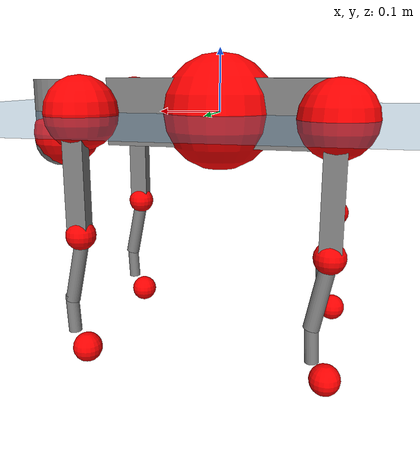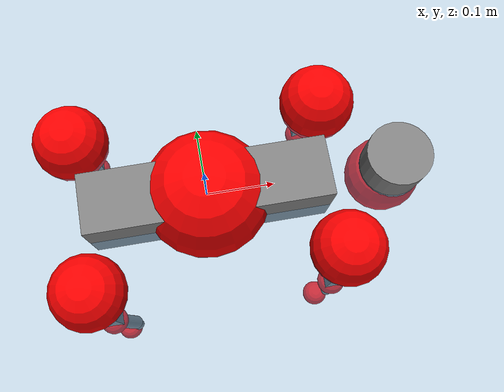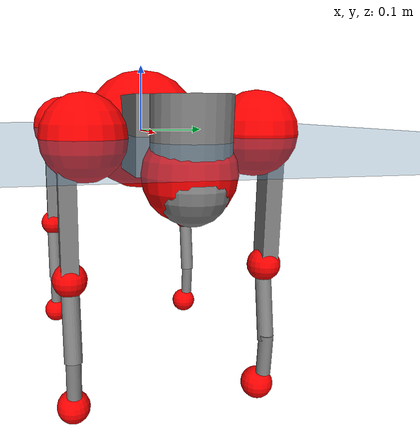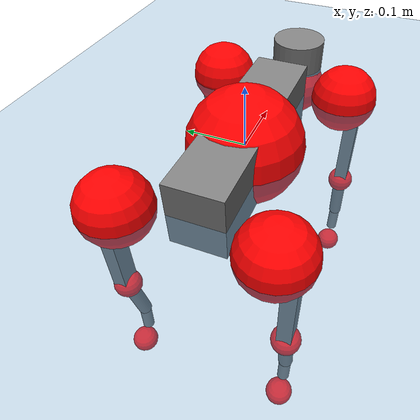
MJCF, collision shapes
<mujoco model="go2">
  <compiler angle="radian" assetdir="assets" balanceinertia="true" inertiafromgeom="false"/>

  <option timestep="0.005" density="1.2" viscosity="2e-05"/>

  <size nkey="1"/>

  <visual>
    <quality shadowsize="8192"/>
    <map shadowclip="0.5"/>
  </visual>

  <default>
    <default class="/">
      <geom contype="0" conaffinity="0" group="1" solref="-1000 -80"/>
      <site size="0.01 0.005 0.005" group="5"/>
      <general forcelimited="true" biastype="affine" gainprm="20" biasprm="0 -20 -0.5"/>
      <default class="go2">
        <joint armature="0.01" damping="0.01" frictionloss="0.2"/>
        <geom condim="1" margin="0.001"/>
        <default class="visual">
          <geom type="mesh" group="2"/>
        </default>
        <default class="collision">
          <geom group="3"/>
          <default class="foot">
            <geom size="0.022 0 0" condim="6" priority="1" friction="0.8 0.02 0.01" solimp="0.015 1 0.022"/>
          </default>
        </default>
        <default class="reward_collision_sphere">
          <geom group="5" rgba="1 0 0 1"/>
        </default>
      </default>
    </default>
  </default>

  <asset>
    <texture type="skybox" colorspace="auto" name="//unnamed_texture_0" builtin="gradient" rgb1="0.95 0.95 0.95" rgb2="0.95 0.95 0.95" width="100" height="600"/>
    <texture type="2d" colorspace="auto" name="texplane" builtin="checker" rgb1="0.345 0.575 0.748" rgb2="0.345 0.575 0.748" markrgb="1 1 1" width="512" height="512"/>
    <material name="MatPlane" class="/" texture="texplane" texuniform="true" texrepeat="2 2" specular="0.9"/>
    <material name="metal" class="/" rgba="0.9 0.95 0.95 1"/>
    <material name="black" class="/" rgba="0 0 0 1"/>
    <material name="white" class="/"/>
    <material name="gray" class="/" rgba="0.671705 0.692426 0.77427 1"/>
    <mesh name="base_0" class="/" file="base_0.obj"/>
    <mesh name="base_1" class="/" file="base_1.obj"/>
    <mesh name="base_2" class="/" file="base_2.obj"/>
    <mesh name="base_3" class="/" file="base_3.obj"/>
    <mesh name="base_4" class="/" file="base_4.obj"/>
    <mesh name="hip_0" class="/" file="hip_0.obj"/>
    <mesh name="hip_1" class="/" file="hip_1.obj"/>
    <mesh name="thigh_0" class="/" file="thigh_0.obj"/>
    <mesh name="thigh_1" class="/" file="thigh_1.obj"/>
    <mesh name="thigh_mirror_0" class="/" file="thigh_mirror_0.obj"/>
    <mesh name="thigh_mirror_1" class="/" file="thigh_mirror_1.obj"/>
    <mesh name="calf_0" class="/" file="calf_0.obj"/>
    <mesh name="calf_1" class="/" file="calf_1.obj"/>
    <mesh name="calf_mirror_0" class="/" file="calf_mirror_0.obj"/>
    <mesh name="calf_mirror_1" class="/" file="calf_mirror_1.obj"/>
    <mesh name="foot" class="/" file="foot.obj"/>
  </asset>

  <worldbody>
    <geom name="floor" class="/" size="100 100 0.125" type="plane" group="0" material="MatPlane"/>
    <light name="toplight_shadow" class="/" pos="0 0 5" dir="0.0990148 0.0990148 -0.990148" type="directional" ambient="0.04 0.04 0.04" diffuse="0.55 0.55 0.55" specular="0.12 0.12 0.12"/>
    <light name="toplight_fill" class="/" pos="0 0 5" dir="0.0990148 0.0990148 -0.990148" type="directional" castshadow="false" ambient="0.04 0.04 0.04" diffuse="0.3 0.3 0.3" specular="0.08 0.08 0.08"/>
    <body name="trunk" childclass="go2" pos="-0.000142618 -0.000200808 0.000246174" quat="1 -6.69249e-06 -3.12596e-06 -2.63337e-05">
      <inertial pos="0.0197185 -0.00058152 -0.00470577" quat="-0.00414482 0.719556 0.00128933 0.694421" mass="5.71749" diaginertia="0.0934583 0.0850957 0.0123782"/>
      <joint name="//unnamed_joint_0" type="free" armature="0" damping="0" frictionloss="0"/>
      <geom name="//unnamed_geom_1" class="visual" material="black" mesh="base_0"/>
      <geom name="//unnamed_geom_2" class="visual" material="black" mesh="base_1"/>
      <geom name="//unnamed_geom_3" class="visual" material="black" mesh="base_2"/>
      <geom name="//unnamed_geom_4" class="visual" material="white" mesh="base_3"/>
      <geom name="//unnamed_geom_5" class="visual" material="gray" mesh="base_4"/>
      <geom name="trunk_1" class="collision" size="0.176418 0.0438466 0.05346" type="box"/>
      <geom name="trunk_2" class="collision" size="0.0468947 0.0422053" pos="0.276867 0 0.0087292" type="cylinder"/>
      <geom name="trunk_3" class="collision" size="0.0440811" pos="0.284639 0 -0.0523752"/>
      <geom name="//unnamed_geom_9" class="reward_collision_sphere" size="0.0937895"/>
      <geom name="//unnamed_geom_10" class="reward_collision_sphere" size="0.0562737" pos="0.27201 0 -0.0392814"/>
      <site name="imu" pos="-0.0245985 -0.00416496 0.0359748" size="0.00937895"/>
      <camera name="track" pos="0 -1.9386 0" quat="0.707107 0.707107 0 0" mode="trackcom"/>
      <camera name="ego_camera" pos="0.303097 0 0.0392814" quat="-0.5 -0.5 0.5 0.5"/>
      <body name="FL_hip" pos="0.186821 0.0471665 0.0026395" quat="1 0.000164174 -0.000100307 -0.000146065">
        <inertial pos="-0.0056297 0.00195186 -0.000907611" quat="0.496187 0.499721 0.506817 0.497207" mass="0.560218" diaginertia="0.000764219 0.000511781 0.000245137"/>
        <joint name="FL_hip_joint" pos="0 0 0" axis="0.999984 0.00247893 0.0050087" stiffness="0.00965997" range="-1.00913 1.03056" armature="0.00948353" damping="0.00181142" frictionloss="0.183852"/>
        <geom name="//unnamed_geom_11" class="visual" material="metal" mesh="hip_0"/>
        <geom name="//unnamed_geom_12" class="visual" material="gray" mesh="hip_1"/>
        <geom name="//unnamed_geom_13" class="collision" size="0.0431432 0.0187579" pos="0 0.0775441 0" quat="0.707107 0.707107 0 0" type="cylinder"/>
        <geom name="//unnamed_geom_14" class="reward_collision_sphere" size="0.0562737" pos="0 0.0678511 0"/>
        <body name="FL_thigh" pos="-0.00121765 0.0941961 0.00211678" quat="1 9.30342e-05 7.45556e-05 5.36048e-05">
          <inertial pos="-0.00415494 -0.0221229 -0.0279291" quat="0.831492 0.0865459 -0.0204732 0.548372" mass="0.950852" diaginertia="0.00515289 0.00498381 0.000446583"/>
          <joint name="FL_thigh_joint" pos="0 0 0" axis="0.0073508 0.999973 -0.000737497" stiffness="0.00505668" range="-1.58844 3.5204" armature="0.00960245" damping="0.0104134" frictionloss="0.179967"/>
          <geom name="//unnamed_geom_15" class="visual" material="metal" mesh="thigh_0"/>
          <geom name="//unnamed_geom_16" class="visual" material="gray" mesh="thigh_1"/>
          <geom name="//unnamed_geom_17" class="collision" size="0.0998858 0.0114892 0.0159442" pos="0 0 -0.0929659" quat="0.707107 0 0.707107 0" type="box"/>
          <body name="FL_calf" pos="-0.000527109 -0.00215352 -0.185202" quat="1 -0.000100996 4.95536e-05 0.000434965">
            <inertial pos="0.00574905 -0.000412381 -0.124818" quat="0.710911 0.00116996 -0.00429338 0.703268" mass="0.198336" diaginertia="0.00129065 0.00127857 2.64562e-05"/>
            <joint name="FL_calf_joint" pos="0 0 0" axis="0.00111774 0.999969 -0.00773738" stiffness="0.00254368" range="-2.75836 -0.833397" armature="0.0097174" damping="0.000536634" frictionloss="0.188415"/>
            <geom name="//unnamed_geom_18" class="visual" material="gray" mesh="calf_0"/>
            <geom name="//unnamed_geom_19" class="visual" material="black" mesh="calf_1"/>
            <geom name="FL_calf0" class="collision" size="0.0112547 0.0562737" pos="0.00777171 0 -0.0523752" quat="0.994493 0 -0.104807 0" type="cylinder"/>
            <geom name="//unnamed_geom_21" class="collision" size="0.0103168 0.0304816" pos="0.0194293 0 -0.129192" quat="0.999688 0 0.0249974 0" type="cylinder"/>
            <geom name="//unnamed_geom_22" class="visual" pos="0 0 -0.185932" quat="1 0 0 0" material="black" mesh="foot"/>
            <geom name="FL_foot" class="foot" size="0.0182541" pos="-0.00194293 0 -0.185932"/>
            <geom name="//unnamed_geom_24" class="reward_collision_sphere" size="0.0234474"/>
            <geom name="//unnamed_geom_25" class="reward_collision_sphere" size="0.0234474" pos="-0.00194293 0 -0.185932"/>
            <site name="FL_foot" class="foot" pos="-0.00194293 0 -0.185932" size="0.00937895"/>
          </body>
        </body>
      </body>
      <body name="FR_hip" pos="0.188441 -0.0441052 -0.00077585" quat="1 2.116e-05 -0.000104731 0.000103468">
        <inertial pos="-0.00461067 -0.00121569 -0.000859948" quat="0.49835 0.504918 0.499592 0.497104" mass="0.554297" diaginertia="0.000771218 0.000498443 0.000244907"/>
        <joint name="FR_hip_joint" pos="0 0 0" axis="0.999993 -0.00372048 -0.000181455" stiffness="0.00711916" range="-1.05085 1.05024" armature="0.00914715" damping="0.0179172" frictionloss="0.180663"/>
        <geom name="//unnamed_geom_26" class="visual" pos="0 8.39639e-10 3.60139e-08" quat="4.63268e-05 1 0 0" material="metal" mesh="hip_0"/>
        <geom name="//unnamed_geom_27" class="visual" pos="0 1.36116e-09 -8.90761e-08" quat="4.63268e-05 1 0 0" material="gray" mesh="hip_1"/>
        <geom name="//unnamed_geom_28" class="collision" size="0.0431432 0.0187579" pos="0 -0.0775441 0" quat="0.707107 0.707107 0 0" type="cylinder"/>
        <geom name="//unnamed_geom_29" class="reward_collision_sphere" size="0.0562737" pos="0 -0.0678511 0"/>
        <body name="FR_thigh" pos="0.00216647 -0.0908369 0.00172606" quat="1 1.93719e-06 -0.000285105 -0.000426034">
          <inertial pos="-0.00298499 0.0199541 -0.0283538" quat="0.549151 -0.0187843 0.086457 0.831027" mass="0.954983" diaginertia="0.00519381 0.00502876 0.000453515"/>
          <joint name="FR_thigh_joint" pos="0 0 0" axis="-0.000790295 -0.999999 -0.00145658" stiffness="0.000893933" range="-3.52179 1.56748" armature="0.00955357" damping="0.0131701" frictionloss="0.187144"/>
          <geom name="//unnamed_geom_30" class="visual" material="metal" mesh="thigh_mirror_0"/>
          <geom name="//unnamed_geom_31" class="visual" material="gray" mesh="thigh_mirror_1"/>
          <geom name="//unnamed_geom_32" class="collision" size="0.0998858 0.0114892 0.0159442" pos="0 0 -0.0929659" quat="0.707107 0 0.707107 0" type="box"/>
          <body name="FR_calf" pos="-0.00133004 0.000220413 -0.185296" quat="1 3.17201e-06 0.000346279 0.000248813">
            <inertial pos="0.0050755 0.000611931 -0.124162" quat="0.704596 -0.00674372 -0.000389178 0.709576" mass="0.199737" diaginertia="0.00129214 0.00125083 2.67603e-05"/>
            <joint name="FR_calf_joint" pos="0 0 0" axis="-0.00728243 -0.999956 -0.00595187" stiffness="0.00281428" range="0.846297 2.71532" armature="0.00999926" damping="0.0172199" frictionloss="0.180634"/>
            <geom name="//unnamed_geom_33" class="visual" material="gray" mesh="calf_mirror_0"/>
            <geom name="//unnamed_geom_34" class="visual" material="black" mesh="calf_mirror_1"/>
            <geom name="FR_calf0" class="collision" size="0.0121926 0.0562737" pos="0.00971464 0 -0.0523752" quat="0.995004 0 -0.0998334 0" type="cylinder"/>
            <geom name="//unnamed_geom_36" class="collision" size="0.0103168 0.0304816" pos="0.0194293 0 -0.129192" quat="0.999688 0 0.0249974 0" type="cylinder"/>
            <geom name="//unnamed_geom_37" class="visual" pos="0 0 -0.185932" quat="1 0 0 0" material="black" mesh="foot"/>
            <geom name="FR_foot" class="foot" size="0.0220162" pos="-0.00194293 0 -0.185932"/>
            <geom name="//unnamed_geom_39" class="reward_collision_sphere" size="0.0234474"/>
            <geom name="//unnamed_geom_40" class="reward_collision_sphere" size="0.0234474" pos="-0.00194293 0 -0.185932"/>
            <site name="FR_foot" class="foot" pos="-0.00194293 0 -0.185932" size="0.00937895"/>
          </body>
        </body>
      </body>
      <body name="RL_hip" pos="-0.188047 0.0447315 -0.000649374" quat="1 -2.86738e-06 4.83865e-07 9.77603e-06">
        <inertial pos="0.00520869 0.00179654 -0.000658988" quat="0.505319 0.497446 0.496383 0.500804" mass="0.550003" diaginertia="0.000754735 0.000503909 0.000239717"/>
        <joint name="RL_hip_joint" pos="0 0 0" axis="-0.999909 0.00189759 -0.0133362" stiffness="0.00439279" range="-1.04731 1.06653" armature="0.0092885" damping="0.0108351" frictionloss="0.190646"/>
        <geom name="//unnamed_geom_41" class="visual" pos="-8.58478e-10 0 -1.68281e-07" quat="4.63268e-05 0 1 0" material="metal" mesh="hip_0"/>
        <geom name="//unnamed_geom_42" class="visual" pos="-1.39169e-09 0 -1.49242e-07" quat="4.63268e-05 0 1 0" material="gray" mesh="hip_1"/>
        <geom name="//unnamed_geom_43" class="collision" size="0.0431432 0.0187579" pos="0 0.0775441 0" quat="0.707107 0.707107 0 0" type="cylinder"/>
        <geom name="//unnamed_geom_44" class="reward_collision_sphere" size="0.0562737" pos="0 0.0678511 0"/>
        <body name="RL_thigh" pos="0.000443616 0.0919189 -0.00145285" quat="1 0.000138746 -7.32304e-05 -1.42243e-05">
          <inertial pos="-0.0037426 -0.0218451 -0.0299701" quat="0.829649 0.0809747 -0.0211656 0.551976" mass="0.963295" diaginertia="0.00510582 0.00488828 0.000439445"/>
          <joint name="RL_thigh_joint" pos="0 0 0" axis="0.00376217 0.999975 0.00599564" range="-0.525861 4.52354" armature="0.00974116" damping="0.00532452" frictionloss="0.185297"/>
          <geom name="//unnamed_geom_45" class="visual" material="metal" mesh="thigh_0"/>
          <geom name="//unnamed_geom_46" class="visual" material="gray" mesh="thigh_1"/>
          <geom name="//unnamed_geom_47" class="collision" size="0.0998858 0.0114892 0.0159442" pos="0 0 -0.0929659" quat="0.707107 0 0.707107 0" type="box"/>
          <body name="RL_calf" pos="0.00040903 -0.00251588 -0.186641" quat="1 3.2159e-05 -5.09132e-05 -4.50744e-05">
            <inertial pos="0.00594905 -0.00029509 -0.123876" quat="0.710459 0.000572037 -0.00440293 0.703724" mass="0.195668" diaginertia="0.00129171 0.00124399 2.66764e-05"/>
            <joint name="RL_calf_joint" pos="0 0 0" axis="-0.0037985 0.999991 -0.00193837" stiffness="7.23972e-05" range="-2.68705 -0.838532" armature="0.00921695" damping="0.00490596" frictionloss="0.187993"/>
            <geom name="//unnamed_geom_48" class="visual" material="gray" mesh="calf_0"/>
            <geom name="//unnamed_geom_49" class="visual" material="black" mesh="calf_1"/>
            <geom name="RL_calf0" class="collision" size="0.0121926 0.0562737" pos="0.00971464 0 -0.0523752" quat="0.995004 0 -0.0998334 0" type="cylinder"/>
            <geom name="//unnamed_geom_51" class="collision" size="0.0103168 0.0304816" pos="0.0194293 0 -0.129192" quat="0.999688 0 0.0249974 0" type="cylinder"/>
            <geom name="//unnamed_geom_52" class="visual" pos="0 0 -0.185932" quat="1 0 0 0" material="black" mesh="foot"/>
            <geom name="RL_foot" class="foot" size="0.0171299" pos="-0.00194293 0 -0.185932"/>
            <geom name="//unnamed_geom_54" class="reward_collision_sphere" size="0.0234474"/>
            <geom name="//unnamed_geom_55" class="reward_collision_sphere" size="0.0234474" pos="-0.00194293 0 -0.185932"/>
            <site name="RL_foot" class="foot" pos="-0.00194293 0 -0.185932" size="0.00937895"/>
          </body>
        </body>
      </body>
      <body name="RR_hip" pos="-0.187343 -0.0462079 -0.000774193" quat="1 -0.000304394 -9.70956e-05 0.000138908">
        <inertial pos="0.00528697 -0.00116824 0.000587834" quat="0.499352 0.497059 0.498135 0.505412" mass="0.55168" diaginertia="0.000757719 0.000499545 0.000244676"/>
        <joint name="RR_hip_joint" pos="0 0 0" axis="-0.999981 -0.00619025 -0.000767977" range="-1.05692 1.02423" armature="0.00941263" damping="0.00634577" frictionloss="0.19124"/>
        <geom name="//unnamed_geom_56" class="visual" pos="8.58403e-10 8.39639e-10 -2.04295e-07" quat="2.14617e-09 4.63268e-05 4.63268e-05 -1" material="metal" mesh="hip_0"/>
        <geom name="//unnamed_geom_57" class="visual" pos="1.39188e-09 1.36116e-09 -6.01656e-08" quat="2.14617e-09 4.63268e-05 4.63268e-05 -1" material="gray" mesh="hip_1"/>
        <geom name="//unnamed_geom_58" class="collision" size="0.0431432 0.0187579" pos="0 -0.0775441 0" quat="0.707107 0.707107 0 0" type="cylinder"/>
        <geom name="//unnamed_geom_59" class="reward_collision_sphere" size="0.0562737" pos="0 -0.0678511 0"/>
        <body name="RR_thigh" pos="0.000461768 -0.0927511 -0.00105373" quat="1 -5.31011e-05 0.000302785 -0.000252081">
          <inertial pos="-0.003621 0.0205439 -0.0292681" quat="0.55209 -0.0203806 0.0840694 0.829285" mass="0.956083" diaginertia="0.00520764 0.00502361 0.000449515"/>
          <joint name="RR_thigh_joint" pos="0 0 0" axis="-0.0063441 -0.99998 0.000650882" stiffness="0.00270866" range="-4.52826 0.507971" armature="0.00946963" damping="0.0139189" frictionloss="0.191636"/>
          <geom name="//unnamed_geom_60" class="visual" material="metal" mesh="thigh_mirror_0"/>
          <geom name="//unnamed_geom_61" class="visual" material="gray" mesh="thigh_mirror_1"/>
          <geom name="//unnamed_geom_62" class="collision" size="0.0998858 0.0114892 0.0159442" pos="0 0 -0.0929659" quat="0.707107 0 0.707107 0" type="box"/>
          <body name="RR_calf" pos="-0.00164248 -0.000668183 -0.187153" quat="1 -0.000306311 9.11281e-05 -0.00041894">
            <inertial pos="0.00791124 0.000690127 -0.123736" quat="0.700931 -0.00387902 -0.00065711 0.713218" mass="0.1994" diaginertia="0.00130958 0.0012592 2.70448e-05"/>
            <joint name="RR_calf_joint" pos="0 0 0" axis="0.00538809 -0.999974 0.00485502" range="0.831506 2.7533" armature="0.00885229" damping="0.00675521" frictionloss="0.189047"/>
            <geom name="//unnamed_geom_63" class="visual" material="gray" mesh="calf_mirror_0"/>
            <geom name="//unnamed_geom_64" class="visual" material="black" mesh="calf_mirror_1"/>
            <geom name="RR_calf0" class="collision" size="0.0121926 0.0562737" pos="0.00971464 0 -0.0523752" quat="0.995004 0 -0.0998334 0" type="cylinder"/>
            <geom name="//unnamed_geom_66" class="collision" size="0.0103168 0.0304816" pos="0.0194293 0 -0.129192" quat="0.999688 0 0.0249974 0" type="cylinder"/>
            <geom name="//unnamed_geom_67" class="visual" pos="0 0 -0.185932" quat="1 0 0 0" material="black" mesh="foot"/>
            <geom name="RR_foot" class="foot" size="0.0208054" pos="-0.00194293 0 -0.185932"/>
            <geom name="//unnamed_geom_69" class="reward_collision_sphere" size="0.0234474"/>
            <geom name="//unnamed_geom_70" class="reward_collision_sphere" size="0.0234474" pos="-0.00194293 0 -0.185932"/>
            <site name="RR_foot" class="foot" pos="-0.00194293 0 -0.185932" size="0.00937895"/>
          </body>
        </body>
      </body>
    </body>
  </worldbody>

  <contact>
    <pair class="/" geom1="floor" geom2="FL_foot" name="//unnamed_contact_0"/>
    <pair class="/" geom1="floor" geom2="FR_foot" name="//unnamed_contact_1"/>
    <pair class="/" geom1="floor" geom2="RL_foot" name="//unnamed_contact_2"/>
    <pair class="/" geom1="floor" geom2="RR_foot" name="//unnamed_contact_3"/>
  </contact>

  <actuator>
    <general name="FL_hip" class="/" joint="FL_hip_joint" forcerange="-23.7851 23.7851" gainprm="19.5213" biasprm="0 -19.5213 -0.462626"/>
    <general name="FL_thigh" class="/" joint="FL_thigh_joint" forcerange="-22.7427 22.7427" gainprm="19.5213" biasprm="0 -19.5213 -0.462626"/>
    <general name="FL_calf" class="/" joint="FL_calf_joint" forcerange="-42.9905 42.9905" gainprm="19.5213" biasprm="0 -19.5213 -0.462626"/>
    <general name="FR_hip" class="/" joint="FR_hip_joint" forcerange="-23.3582 23.3582" gainprm="19.5213" biasprm="0 -19.5213 -0.462626"/>
    <general name="FR_thigh" class="/" joint="FR_thigh_joint" forcerange="-23.3827 23.3827" gainprm="19.5213" biasprm="0 -19.5213 -0.462626"/>
    <general name="FR_calf" class="/" joint="FR_calf_joint" forcerange="-41.8866 41.8866" gainprm="19.5213" biasprm="0 -19.5213 -0.462626"/>
    <general name="RL_hip" class="/" joint="RL_hip_joint" forcerange="-22.2102 22.2102" gainprm="19.5213" biasprm="0 -19.5213 -0.462626"/>
    <general name="RL_thigh" class="/" joint="RL_thigh_joint" forcerange="-22.7125 22.7125" gainprm="19.5213" biasprm="0 -19.5213 -0.462626"/>
    <general name="RL_calf" class="/" joint="RL_calf_joint" forcerange="-43.9586 43.9586" gainprm="19.5213" biasprm="0 -19.5213 -0.462626"/>
    <general name="RR_hip" class="/" joint="RR_hip_joint" forcerange="-20.8283 20.8283" gainprm="19.5213" biasprm="0 -19.5213 -0.462626"/>
    <general name="RR_thigh" class="/" joint="RR_thigh_joint" forcerange="-21.7958 21.7958" gainprm="19.5213" biasprm="0 -19.5213 -0.462626"/>
    <general name="RR_calf" class="/" joint="RR_calf_joint" forcerange="-43.0594 43.0594" gainprm="19.5213" biasprm="0 -19.5213 -0.462626"/>
  </actuator>

  <sensor>
    <gyro site="imu" name="imu_angular_velocity"/>
    <velocimeter site="imu" name="imu_linear_velocity"/>
    <framelinvel objtype="site" objname="FL_foot" name="FL_foot_global_linear_velocity"/>
    <framelinvel objtype="site" objname="FR_foot" name="FR_foot_global_linear_velocity"/>
    <framelinvel objtype="site" objname="RL_foot" name="RL_foot_global_linear_velocity"/>
    <framelinvel objtype="site" objname="RR_foot" name="RR_foot_global_linear_velocity"/>
  </sensor>

  <keyframe>
    <key name="home" qpos="0 0 0.325 1 0 0 0 0.1 0.8 -1.5 -0.1 -0.8 1.5 -0.1 0.8 -1.5 0.1 -0.8 1.5"/>
  </keyframe>
</mujoco>
